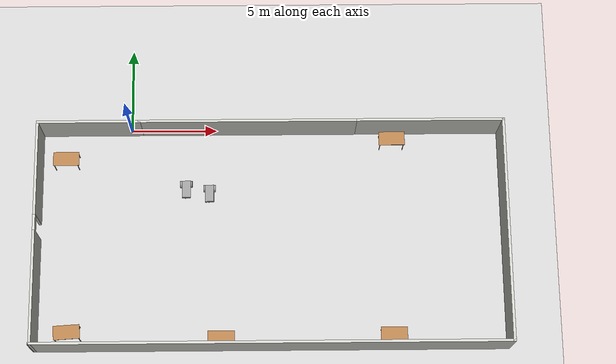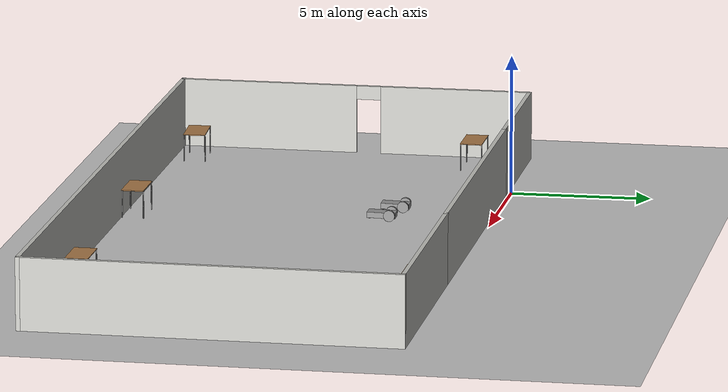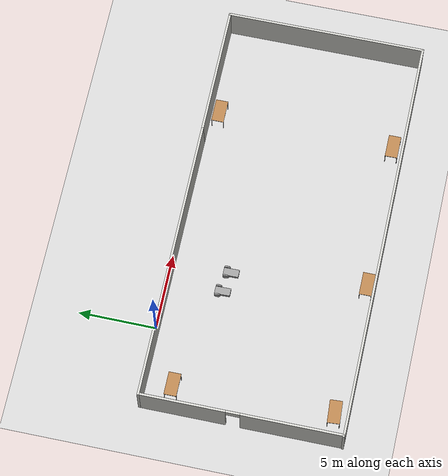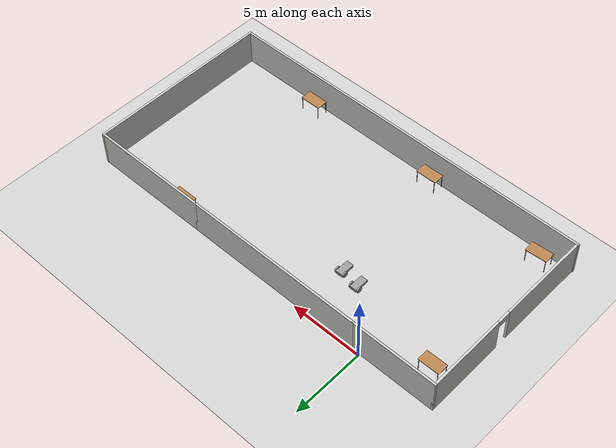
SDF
<sdf version="1.6">
 <world name="default">
  <plugin name="project1" filename="libproject1.so"/>
  <light name="sun" type="directional">
   <pose>0 0 10 0 -0 0</pose>
   <diffuse>0.8 0.8 0.8 1</diffuse>
   <specular>0.2 0.2 0.2 1</specular>
   <attenuation>
    <range>1000</range>
    <constant>0.9</constant>
    <linear>0.01</linear>
    <quadratic>0.001</quadratic>
   </attenuation>
   <direction>-0.5 0.1 -0.9</direction>
  </light>
  <model name="ground_plane">
   <static>1</static>
   <link name="link">
    <collision name="collision">
     <geometry><plane><normal>0 0 1</normal><size>100 100</size></plane></geometry>
     <surface><friction><ode><mu>100</mu><mu2>50</mu2></ode></friction></surface>
    </collision>
    <visual name="visual">
     <cast_shadows>0</cast_shadows>
     <geometry><plane><normal>0 0 1</normal><size>100 100</size></plane></geometry>
     <material>
      <script><uri>file://media/materials/scripts/gazebo.material</uri><name>Gazebo/Grey</name></script>
     </material>
    </visual>
   </link>
  </model>
  <gravity>0 0 -9.8</gravity>
  <magnetic_field>6e-06 2.3e-05 -4.2e-05</magnetic_field>
  <atmosphere type="adiabatic"/>
  <physics name="default_physics" default="0" type="ode">
   <max_step_size>0.001</max_step_size>
   <real_time_factor>1</real_time_factor>
   <real_time_update_rate>1000</real_time_update_rate>
  </physics>
  <scene><ambient>0.4 0.4 0.4 1</ambient><background>0.7 0.7 0.7 1</background><shadows>1</shadows></scene>
  <spherical_coordinates>
   <surface_model>EARTH_WGS84</surface_model>
   <latitude_deg>0</latitude_deg>
   <longitude_deg>0</longitude_deg>
   <elevation>0</elevation>
   <heading_deg>0</heading_deg>
  </spherical_coordinates>
  <model name="table_0">
   <static>1</static>
   <link name="link">
    <collision name="surface">
     <pose>0 0 1 0 -0 0</pose>
     <geometry><box><size>1.5 0.8 0.03</size></box></geometry>
     <surface><friction><ode><mu>0.6</mu><mu2>0.6</mu2></ode></friction></surface>
    </collision>
    <visual name="visual1">
     <pose>0 0 1 0 -0 0</pose>
     <geometry><box><size>1.5 0.8 0.03</size></box></geometry>
     <material>
      <script><uri>file://media/materials/scripts/gazebo.material</uri><name>Gazebo/Wood</name></script>
     </material>
    </visual>
    <collision name="front_left_leg">
     <pose>0.68 0.38 0.5 0 -0 0</pose>
     <geometry><cylinder><radius>0.02</radius><length>1</length></cylinder></geometry>
    </collision>
    <visual name="front_left_leg">
     <pose>0.68 0.38 0.5 0 -0 0</pose>
     <geometry><cylinder><radius>0.02</radius><length>1</length></cylinder></geometry>
     <material>
      <script><uri>file://media/materials/scripts/gazebo.material</uri><name>Gazebo/Grey</name></script>
     </material>
    </visual>
    <collision name="front_right_leg">
     <pose>0.68 -0.38 0.5 0 -0 0</pose>
     <geometry><cylinder><radius>0.02</radius><length>1</length></cylinder></geometry>
    </collision>
    <visual name="front_right_leg">
     <pose>0.68 -0.38 0.5 0 -0 0</pose>
     <geometry><cylinder><radius>0.02</radius><length>1</length></cylinder></geometry>
     <material>
      <script><uri>file://media/materials/scripts/gazebo.material</uri><name>Gazebo/Grey</name></script>
     </material>
    </visual>
    <collision name="back_right_leg">
     <pose>-0.68 -0.38 0.5 0 -0 0</pose>
     <geometry><cylinder><radius>0.02</radius><length>1</length></cylinder></geometry>
    </collision>
    <visual name="back_right_leg">
     <pose>-0.68 -0.38 0.5 0 -0 0</pose>
     <geometry><cylinder><radius>0.02</radius><length>1</length></cylinder></geometry>
     <material>
      <script><uri>file://media/materials/scripts/gazebo.material</uri><name>Gazebo/Grey</name></script>
     </material>
    </visual>
    <collision name="back_left_leg">
     <pose>-0.68 0.38 0.5 0 -0 0</pose>
     <geometry><cylinder><radius>0.02</radius><length>1</length></cylinder></geometry>
    </collision>
    <visual name="back_left_leg">
     <pose>-0.68 0.38 0.5 0 -0 0</pose>
     <geometry><cylinder><radius>0.02</radius><length>1</length></cylinder></geometry>
     <material>
      <script><uri>file://media/materials/scripts/gazebo.material</uri><name>Gazebo/Grey</name></script>
     </material>
    </visual>
   </link>
   <pose>-3.73384 -1.95117 0 0 -0 0</pose>
  </model>
  <model name="classroom">
   <pose>8.12459 -6.59825 0 0 -0 0</pose>
   <link name="Wall_10">
    <pose>-13.375 0 0 0 0 -1.5708</pose>
    <visual name="Wall_10_Visual_0">
     <pose>-3.72559 0 1.25 0 -0 0</pose>
     <geometry><box><size>5.54883 0.15 2.5</size></box></geometry>
     <material>
      <script><uri>file://media/materials/scripts/gazebo.material</uri><name>Gazebo/CeilingTiled</name></script>
      <ambient>1 1 1 1</ambient>
     </material>
     <meta><layer>0</layer></meta>
    </visual>
    <collision name="Wall_10_Collision_0">
     <geometry><box><size>5.54883 0.15 2.5</size></box></geometry>
     <pose>-3.72559 0 1.25 0 -0 0</pose>
    </collision>
    <visual name="Wall_10_Visual_1">
     <pose>3.22441 0 1.25 0 -0 0</pose>
     <geometry><box><size>6.55117 0.15 2.5</size></box></geometry>
     <material>
      <script><uri>file://media/materials/scripts/gazebo.material</uri><name>Gazebo/CeilingTiled</name></script>
      <ambient>1 1 1 1</ambient>
     </material>
     <meta><layer>0</layer></meta>
    </visual>
    <collision name="Wall_10_Collision_1">
     <geometry><box><size>6.55117 0.15 2.5</size></box></geometry>
     <pose>3.22441 0 1.25 0 -0 0</pose>
    </collision>
    <visual name="Wall_10_Visual_2">
     <pose>-0.501171 0 2.25 0 -0 0</pose>
     <geometry><box><size>0.9 0.15 0.5</size></box></geometry>
     <material>
      <script><uri>file://media/materials/scripts/gazebo.material</uri><name>Gazebo/CeilingTiled</name></script>
      <ambient>1 1 1 1</ambient>
     </material>
     <meta><layer>0</layer></meta>
    </visual>
    <collision name="Wall_10_Collision_2">
     <geometry><box><size>0.9 0.15 0.5</size></box></geometry>
     <pose>-0.501171 0 2.25 0 -0 0</pose>
    </collision>
   </link>
   <link name="Wall_14">
    <collision name="Wall_14_Collision">
     <geometry><box><size>8.5 0.15 2.5</size></box></geometry>
     <pose>0 0 1.25 0 -0 0</pose>
    </collision>
    <visual name="Wall_14_Visual">
     <pose>0 0 1.25 0 -0 0</pose>
     <geometry><box><size>8.5 0.15 2.5</size></box></geometry>
     <material>
      <script><uri>file://media/materials/scripts/gazebo.material</uri><name>Gazebo/CeilingTiled</name></script>
      <ambient>0.921569 0.807843 0.615686 1</ambient>
     </material>
     <meta><layer>0</layer></meta>
    </visual>
    <pose>9.25 6.425 0 0 -0 0</pose>
   </link>
   <link name="Wall_15">
    <collision name="Wall_15_Collision">
     <geometry><box><size>13 0.15 2.5</size></box></geometry>
     <pose>0 0 1.25 0 -0 0</pose>
    </collision>
    <visual name="Wall_15_Visual">
     <pose>0 0 1.25 0 -0 0</pose>
     <geometry><box><size>13 0.15 2.5</size></box></geometry>
     <material>
      <script><uri>file://media/materials/scripts/gazebo.material</uri><name>Gazebo/CeilingTiled</name></script>
      <ambient>1 1 1 1</ambient>
     </material>
     <meta><layer>0</layer></meta>
    </visual>
    <pose>13.425 0 0 0 0 -1.5708</pose>
   </link>
   <link name="Wall_16">
    <collision name="Wall_16_Collision">
     <geometry><box><size>27 0.15 2.5</size></box></geometry>
     <pose>0 0 1.25 0 -0 0</pose>
    </collision>
    <visual name="Wall_16_Visual">
     <pose>0 0 1.25 0 -0 0</pose>
     <geometry><box><size>27 0.15 2.5</size></box></geometry>
     <material>
      <script><uri>file://media/materials/scripts/gazebo.material</uri><name>Gazebo/CeilingTiled</name></script>
      <ambient>1 1 1 1</ambient>
     </material>
     <meta><layer>0</layer></meta>
    </visual>
    <pose>0 -6.425 0 0 -0 3.14159</pose>
   </link>
   <link name="Wall_5">
    <collision name="Wall_5_Collision">
     <geometry><box><size>12.75 0.15 2.5</size></box></geometry>
     <pose>0 0 1.25 0 -0 0</pose>
    </collision>
    <visual name="Wall_5_Visual">
     <pose>0 0 1.25 0 -0 0</pose>
     <geometry><box><size>12.75 0.15 2.5</size></box></geometry>
     <material>
      <script><uri>file://media/materials/scripts/gazebo.material</uri><name>Gazebo/CeilingTiled</name></script>
      <ambient>0.921569 0.807843 0.615686 1</ambient>
     </material>
     <meta><layer>0</layer></meta>
    </visual>
    <pose>-1.225 6.425 0 0 -0 0</pose>
   </link>
   <link name="Wall_9">
    <collision name="Wall_9_Collision">
     <geometry><box><size>6 0.15 2.5</size></box></geometry>
     <pose>0 0 1.25 0 -0 0</pose>
    </collision>
    <visual name="Wall_9_Visual">
     <pose>0 0 1.25 0 -0 0</pose>
     <geometry><box><size>6 0.15 2.5</size></box></geometry>
     <material>
      <script><uri>file://media/materials/scripts/gazebo.material</uri><name>Gazebo/CeilingTiled</name></script>
      <ambient>0.921569 0.807843 0.615686 1</ambient>
     </material>
     <meta><layer>0</layer></meta>
    </visual>
    <pose>-10.45 6.425 0 0 -0 3.14159</pose>
   </link>
   <static>1</static>
  </model>
  <model name="minibot">
   <link name="link_0">
    <pose>0.01125 -0.03748 0.0275 0 -0 0</pose>
    <inertial>
     <mass>1</mass>
     <inertia>
      <ixx>0.166667</ixx>
      <ixy>0</ixy>
      <ixz>0</ixz>
      <iyy>0.166667</iyy>
      <iyz>0</iyz>
      <izz>0.166667</izz>
     </inertia>
    </inertial>
    <visual name="visual">
     <geometry><box><size>0.5 1 0.2</size></box></geometry>
     <material>
      <lighting>1</lighting>
      <script><uri>file://media/materials/scripts/gazebo.material</uri><name>Gazebo/Grey</name></script>
      <shader type="pixel"><normal_map>__default__</normal_map></shader>
      <ambient>0.3 0.3 0.3 1</ambient>
      <diffuse>0.7 0.7 0.7 1</diffuse>
      <specular>0.01 0.01 0.01 1</specular>
      <emissive>0 0 0 1</emissive>
     </material>
    </visual>
    <collision name="collision">
     <geometry><box><size>0.5 1 0.2</size></box></geometry>
     <surface>
      <friction>
       <ode><mu>1</mu><mu2>1</mu2><fdir1>0 0 0</fdir1><slip1>0</slip1><slip2>0</slip2></ode>
       <torsional>
        <coefficient>1</coefficient>
        <patch_radius>0</patch_radius>
        <surface_radius>0</surface_radius>
        <use_patch_radius>1</use_patch_radius>
        <ode><slip>0</slip></ode>
       </torsional>
      </friction>
      <bounce><restitution_coefficient>0</restitution_coefficient><threshold>1e+06</threshold></bounce>
      <contact>
       <collide_without_contact>0</collide_without_contact>
       <collide_without_contact_bitmask>1</collide_without_contact_bitmask>
       <collide_bitmask>1</collide_bitmask>
       <ode>
        <soft_cfm>0</soft_cfm>
        <soft_erp>0.2</soft_erp>
        <kp>1e+13</kp>
        <kd>1</kd>
        <max_vel>0.01</max_vel>
        <min_depth>0</min_depth>
       </ode>
       <bullet>
        <split_impulse>1</split_impulse>
        <split_impulse_penetration_threshold>-0.01</split_impulse_penetration_threshold>
        <soft_cfm>0</soft_cfm>
        <soft_erp>0.2</soft_erp>
        <kp>1e+13</kp>
        <kd>1</kd>
       </bullet>
      </contact>
     </surface>
    </collision>
   </link>
   <link name="link_1">
    <pose>-0.03375 -0.48748 -0.1225 0 -0 0</pose>
    <inertial>
     <mass>1</mass>
     <inertia><ixx>0.1</ixx><ixy>0</ixy><ixz>0</ixz><iyy>0.1</iyy><iyz>0</iyz><izz>0.1</izz></inertia>
    </inertial>
    <visual name="visual">
     <geometry><sphere><radius>0.05</radius></sphere></geometry>
     <material>
      <lighting>1</lighting>
      <script><uri>file://media/materials/scripts/gazebo.material</uri><name>Gazebo/Grey</name></script>
      <shader type="pixel"><normal_map>__default__</normal_map></shader>
      <ambient>0.3 0.3 0.3 1</ambient>
      <diffuse>0.7 0.7 0.7 1</diffuse>
      <specular>0.01 0.01 0.01 1</specular>
      <emissive>0 0 0 1</emissive>
     </material>
    </visual>
    <collision name="collision">
     <geometry><sphere><radius>0.05</radius></sphere></geometry>
     <surface>
      <friction>
       <ode><mu>1</mu><mu2>1</mu2><fdir1>0 0 0</fdir1><slip1>0</slip1><slip2>0</slip2></ode>
       <torsional>
        <coefficient>1</coefficient>
        <patch_radius>0</patch_radius>
        <surface_radius>0</surface_radius>
        <use_patch_radius>1</use_patch_radius>
        <ode><slip>0</slip></ode>
       </torsional>
      </friction>
      <bounce><restitution_coefficient>0</restitution_coefficient><threshold>1e+06</threshold></bounce>
      <contact>
       <collide_without_contact>0</collide_without_contact>
       <collide_without_contact_bitmask>1</collide_without_contact_bitmask>
       <collide_bitmask>1</collide_bitmask>
       <ode>
        <soft_cfm>0</soft_cfm>
        <soft_erp>0.2</soft_erp>
        <kp>1e+13</kp>
        <kd>1</kd>
        <max_vel>0.01</max_vel>
        <min_depth>0</min_depth>
       </ode>
       <bullet>
        <split_impulse>1</split_impulse>
        <split_impulse_penetration_threshold>-0.01</split_impulse_penetration_threshold>
        <soft_cfm>0</soft_cfm>
        <soft_erp>0.2</soft_erp>
        <kp>1e+13</kp>
        <kd>1</kd>
       </bullet>
      </contact>
     </surface>
    </collision>
   </link>
   <link name="link_3">
    <pose>0.311568 0.26248 0.0475 0 -0 0</pose>
    <inertial>
     <mass>1</mass>
     <inertia><ixx>0.145833</ixx><ixy>0</ixy><ixz>0</ixz><iyy>0.145833</iyy><iyz>0</iyz><izz>0.125</izz></inertia>
    </inertial>
    <visual name="visual">
     <pose>0 0 0 1.57 -0 1.57</pose>
     <geometry><cylinder><radius>0.2</radius><length>0.1</length></cylinder></geometry>
     <material>
      <lighting>1</lighting>
      <script><uri>file://media/materials/scripts/gazebo.material</uri><name>Gazebo/Grey</name></script>
      <shader type="pixel"><normal_map>__default__</normal_map></shader>
      <ambient>0.3 0.3 0.3 1</ambient>
      <diffuse>0.7 0.7 0.7 1</diffuse>
      <specular>0.01 0.01 0.01 1</specular>
      <emissive>0 0 0 1</emissive>
     </material>
    </visual>
    <collision name="collision">
     <pose>0 0 0 1.57 -0 1.57</pose>
     <geometry><cylinder><radius>0.2</radius><length>0.1</length></cylinder></geometry>
     <surface>
      <friction>
       <ode><mu>1</mu><mu2>1</mu2><fdir1>0 0 0</fdir1><slip1>0</slip1><slip2>0</slip2></ode>
       <torsional>
        <coefficient>1</coefficient>
        <patch_radius>0</patch_radius>
        <surface_radius>0</surface_radius>
        <use_patch_radius>1</use_patch_radius>
        <ode><slip>0</slip></ode>
       </torsional>
      </friction>
      <bounce><restitution_coefficient>0</restitution_coefficient><threshold>1e+06</threshold></bounce>
      <contact>
       <collide_without_contact>0</collide_without_contact>
       <collide_without_contact_bitmask>1</collide_without_contact_bitmask>
       <collide_bitmask>1</collide_bitmask>
       <ode>
        <soft_cfm>0</soft_cfm>
        <soft_erp>0.2</soft_erp>
        <kp>1e+13</kp>
        <kd>1</kd>
        <max_vel>0.01</max_vel>
        <min_depth>0</min_depth>
       </ode>
       <bullet>
        <split_impulse>1</split_impulse>
        <split_impulse_penetration_threshold>-0.01</split_impulse_penetration_threshold>
        <soft_cfm>0</soft_cfm>
        <soft_erp>0.2</soft_erp>
        <kp>1e+13</kp>
        <kd>1</kd>
       </bullet>
      </contact>
     </surface>
    </collision>
   </link>
   <link name="link_3_clone">
    <pose>-0.289068 0.26248 0.0475 0 -0 0</pose>
    <inertial>
     <mass>1</mass>
     <inertia><ixx>0.145833</ixx><ixy>0</ixy><ixz>0</ixz><iyy>0.145833</iyy><iyz>0</iyz><izz>0.125</izz></inertia>
    </inertial>
    <visual name="visual">
     <pose>0 0 0 1.57 -0 1.57</pose>
     <geometry><cylinder><radius>0.2</radius><length>0.1</length></cylinder></geometry>
     <material>
      <lighting>1</lighting>
      <script><uri>file://media/materials/scripts/gazebo.material</uri><name>Gazebo/Grey</name></script>
      <shader type="pixel"><normal_map>__default__</normal_map></shader>
      <ambient>0.3 0.3 0.3 1</ambient>
      <diffuse>0.7 0.7 0.7 1</diffuse>
      <specular>0.01 0.01 0.01 1</specular>
      <emissive>0 0 0 1</emissive>
     </material>
    </visual>
    <collision name="collision">
     <pose>0 0 0 1.57 -0 1.57</pose>
     <geometry><cylinder><radius>0.2</radius><length>0.1</length></cylinder></geometry>
     <surface>
      <friction>
       <ode><mu>1</mu><mu2>1</mu2><fdir1>0 0 0</fdir1><slip1>0</slip1><slip2>0</slip2></ode>
       <torsional>
        <coefficient>1</coefficient>
        <patch_radius>0</patch_radius>
        <surface_radius>0</surface_radius>
        <use_patch_radius>1</use_patch_radius>
        <ode><slip>0</slip></ode>
       </torsional>
      </friction>
      <bounce><restitution_coefficient>0</restitution_coefficient><threshold>1e+06</threshold></bounce>
      <contact>
       <collide_without_contact>0</collide_without_contact>
       <collide_without_contact_bitmask>1</collide_without_contact_bitmask>
       <collide_bitmask>1</collide_bitmask>
       <ode>
        <soft_cfm>0</soft_cfm>
        <soft_erp>0.2</soft_erp>
        <kp>1e+13</kp>
        <kd>1</kd>
        <max_vel>0.01</max_vel>
        <min_depth>0</min_depth>
       </ode>
       <bullet>
        <split_impulse>1</split_impulse>
        <split_impulse_penetration_threshold>-0.01</split_impulse_penetration_threshold>
        <soft_cfm>0</soft_cfm>
        <soft_erp>0.2</soft_erp>
        <kp>1e+13</kp>
        <kd>1</kd>
       </bullet>
      </contact>
     </surface>
    </collision>
   </link>
   <joint name="link_0_JOINT_1" type="revolute">
    <parent>link_0</parent>
    <child>link_3_clone</child>
    <axis>
     <xyz>1 0 0</xyz>
     <use_parent_model_frame>0</use_parent_model_frame>
     <limit>
      <lower>-1.79769e+308</lower>
      <upper>1.79769e+308</upper>
      <effort>-1</effort>
      <velocity>-1</velocity>
     </limit>
     <dynamics>
      <spring_reference>0</spring_reference>
      <spring_stiffness>0</spring_stiffness>
      <damping>0</damping>
     </dynamics>
    </axis>
    <physics>
     <ode><limit><cfm>0</cfm><erp>0.2</erp></limit><suspension><cfm>0</cfm><erp>0.2</erp></suspension></ode>
    </physics>
   </joint>
   <joint name="link_0_JOINT_2" type="revolute">
    <parent>link_0</parent>
    <child>link_3</child>
    <axis>
     <xyz>1 0 0</xyz>
     <use_parent_model_frame>0</use_parent_model_frame>
     <limit>
      <lower>-1.79769e+308</lower>
      <upper>1.79769e+308</upper>
      <effort>-1</effort>
      <velocity>-1</velocity>
     </limit>
     <dynamics>
      <spring_reference>0</spring_reference>
      <spring_stiffness>0</spring_stiffness>
      <damping>0</damping>
     </dynamics>
    </axis>
    <physics>
     <ode><limit><cfm>0</cfm><erp>0.2</erp></limit><suspension><cfm>0</cfm><erp>0.2</erp></suspension></ode>
    </physics>
   </joint>
   <joint name="link_0_JOINT_3" type="ball">
    <parent>link_0</parent>
    <child>link_1</child>
    <physics>
     <ode><limit><cfm>0</cfm><erp>0.2</erp></limit><suspension><cfm>0</cfm><erp>0.2</erp></suspension></ode>
    </physics>
   </joint>
   <static>0</static>
   <pose>3.21371 -3.58428 0.159519 -0.026542 1.6e-05 0.012409</pose>
  </model>
  <model name="minibot_0">
   <link name="link_0">
    <pose>0.01125 -0.03748 0.0275 0 -0 0</pose>
    <inertial>
     <mass>1</mass>
     <inertia>
      <ixx>0.166667</ixx>
      <ixy>0</ixy>
      <ixz>0</ixz>
      <iyy>0.166667</iyy>
      <iyz>0</iyz>
      <izz>0.166667</izz>
     </inertia>
    </inertial>
    <visual name="visual">
     <geometry><box><size>0.5 1 0.2</size></box></geometry>
     <material>
      <lighting>1</lighting>
      <script><uri>file://media/materials/scripts/gazebo.material</uri><name>Gazebo/Grey</name></script>
      <shader type="pixel"><normal_map>__default__</normal_map></shader>
      <ambient>0.3 0.3 0.3 1</ambient>
      <diffuse>0.7 0.7 0.7 1</diffuse>
      <specular>0.01 0.01 0.01 1</specular>
      <emissive>0 0 0 1</emissive>
     </material>
    </visual>
    <collision name="collision">
     <geometry><box><size>0.5 1 0.2</size></box></geometry>
     <surface>
      <friction>
       <ode><mu>1</mu><mu2>1</mu2><fdir1>0 0 0</fdir1><slip1>0</slip1><slip2>0</slip2></ode>
       <torsional>
        <coefficient>1</coefficient>
        <patch_radius>0</patch_radius>
        <surface_radius>0</surface_radius>
        <use_patch_radius>1</use_patch_radius>
        <ode><slip>0</slip></ode>
       </torsional>
      </friction>
      <bounce><restitution_coefficient>0</restitution_coefficient><threshold>1e+06</threshold></bounce>
      <contact>
       <collide_without_contact>0</collide_without_contact>
       <collide_without_contact_bitmask>1</collide_without_contact_bitmask>
       <collide_bitmask>1</collide_bitmask>
       <ode>
        <soft_cfm>0</soft_cfm>
        <soft_erp>0.2</soft_erp>
        <kp>1e+13</kp>
        <kd>1</kd>
        <max_vel>0.01</max_vel>
        <min_depth>0</min_depth>
       </ode>
       <bullet>
        <split_impulse>1</split_impulse>
        <split_impulse_penetration_threshold>-0.01</split_impulse_penetration_threshold>
        <soft_cfm>0</soft_cfm>
        <soft_erp>0.2</soft_erp>
        <kp>1e+13</kp>
        <kd>1</kd>
       </bullet>
      </contact>
     </surface>
    </collision>
   </link>
   <link name="link_1">
    <pose>-0.03375 -0.48748 -0.1225 0 -0 0</pose>
    <inertial>
     <mass>1</mass>
     <inertia><ixx>0.1</ixx><ixy>0</ixy><ixz>0</ixz><iyy>0.1</iyy><iyz>0</iyz><izz>0.1</izz></inertia>
    </inertial>
    <visual name="visual">
     <geometry><sphere><radius>0.05</radius></sphere></geometry>
     <material>
      <lighting>1</lighting>
      <script><uri>file://media/materials/scripts/gazebo.material</uri><name>Gazebo/Grey</name></script>
      <shader type="pixel"><normal_map>__default__</normal_map></shader>
      <ambient>0.3 0.3 0.3 1</ambient>
      <diffuse>0.7 0.7 0.7 1</diffuse>
      <specular>0.01 0.01 0.01 1</specular>
      <emissive>0 0 0 1</emissive>
     </material>
    </visual>
    <collision name="collision">
     <geometry><sphere><radius>0.05</radius></sphere></geometry>
     <surface>
      <friction>
       <ode><mu>1</mu><mu2>1</mu2><fdir1>0 0 0</fdir1><slip1>0</slip1><slip2>0</slip2></ode>
       <torsional>
        <coefficient>1</coefficient>
        <patch_radius>0</patch_radius>
        <surface_radius>0</surface_radius>
        <use_patch_radius>1</use_patch_radius>
        <ode><slip>0</slip></ode>
       </torsional>
      </friction>
      <bounce><restitution_coefficient>0</restitution_coefficient><threshold>1e+06</threshold></bounce>
      <contact>
       <collide_without_contact>0</collide_without_contact>
       <collide_without_contact_bitmask>1</collide_without_contact_bitmask>
       <collide_bitmask>1</collide_bitmask>
       <ode>
        <soft_cfm>0</soft_cfm>
        <soft_erp>0.2</soft_erp>
        <kp>1e+13</kp>
        <kd>1</kd>
        <max_vel>0.01</max_vel>
        <min_depth>0</min_depth>
       </ode>
       <bullet>
        <split_impulse>1</split_impulse>
        <split_impulse_penetration_threshold>-0.01</split_impulse_penetration_threshold>
        <soft_cfm>0</soft_cfm>
        <soft_erp>0.2</soft_erp>
        <kp>1e+13</kp>
        <kd>1</kd>
       </bullet>
      </contact>
     </surface>
    </collision>
   </link>
   <link name="link_3">
    <pose>0.311568 0.26248 0.0475 0 -0 0</pose>
    <inertial>
     <mass>1</mass>
     <inertia><ixx>0.145833</ixx><ixy>0</ixy><ixz>0</ixz><iyy>0.145833</iyy><iyz>0</iyz><izz>0.125</izz></inertia>
    </inertial>
    <visual name="visual">
     <pose>0 0 0 1.57 -0 1.57</pose>
     <geometry><cylinder><radius>0.2</radius><length>0.1</length></cylinder></geometry>
     <material>
      <lighting>1</lighting>
      <script><uri>file://media/materials/scripts/gazebo.material</uri><name>Gazebo/Grey</name></script>
      <shader type="pixel"><normal_map>__default__</normal_map></shader>
      <ambient>0.3 0.3 0.3 1</ambient>
      <diffuse>0.7 0.7 0.7 1</diffuse>
      <specular>0.01 0.01 0.01 1</specular>
      <emissive>0 0 0 1</emissive>
     </material>
    </visual>
    <collision name="collision">
     <pose>0 0 0 1.57 -0 1.57</pose>
     <geometry><cylinder><radius>0.2</radius><length>0.1</length></cylinder></geometry>
     <surface>
      <friction>
       <ode><mu>1</mu><mu2>1</mu2><fdir1>0 0 0</fdir1><slip1>0</slip1><slip2>0</slip2></ode>
       <torsional>
        <coefficient>1</coefficient>
        <patch_radius>0</patch_radius>
        <surface_radius>0</surface_radius>
        <use_patch_radius>1</use_patch_radius>
        <ode><slip>0</slip></ode>
       </torsional>
      </friction>
      <bounce><restitution_coefficient>0</restitution_coefficient><threshold>1e+06</threshold></bounce>
      <contact>
       <collide_without_contact>0</collide_without_contact>
       <collide_without_contact_bitmask>1</collide_without_contact_bitmask>
       <collide_bitmask>1</collide_bitmask>
       <ode>
        <soft_cfm>0</soft_cfm>
        <soft_erp>0.2</soft_erp>
        <kp>1e+13</kp>
        <kd>1</kd>
        <max_vel>0.01</max_vel>
        <min_depth>0</min_depth>
       </ode>
       <bullet>
        <split_impulse>1</split_impulse>
        <split_impulse_penetration_threshold>-0.01</split_impulse_penetration_threshold>
        <soft_cfm>0</soft_cfm>
        <soft_erp>0.2</soft_erp>
        <kp>1e+13</kp>
        <kd>1</kd>
       </bullet>
      </contact>
     </surface>
    </collision>
   </link>
   <link name="link_3_clone">
    <pose>-0.289068 0.26248 0.0475 0 -0 0</pose>
    <inertial>
     <mass>1</mass>
     <inertia><ixx>0.145833</ixx><ixy>0</ixy><ixz>0</ixz><iyy>0.145833</iyy><iyz>0</iyz><izz>0.125</izz></inertia>
    </inertial>
    <visual name="visual">
     <pose>0 0 0 1.57 -0 1.57</pose>
     <geometry><cylinder><radius>0.2</radius><length>0.1</length></cylinder></geometry>
     <material>
      <lighting>1</lighting>
      <script><uri>file://media/materials/scripts/gazebo.material</uri><name>Gazebo/Grey</name></script>
      <shader type="pixel"><normal_map>__default__</normal_map></shader>
      <ambient>0.3 0.3 0.3 1</ambient>
      <diffuse>0.7 0.7 0.7 1</diffuse>
      <specular>0.01 0.01 0.01 1</specular>
      <emissive>0 0 0 1</emissive>
     </material>
    </visual>
    <collision name="collision">
     <pose>0 0 0 1.57 -0 1.57</pose>
     <geometry><cylinder><radius>0.2</radius><length>0.1</length></cylinder></geometry>
     <surface>
      <friction>
       <ode><mu>1</mu><mu2>1</mu2><fdir1>0 0 0</fdir1><slip1>0</slip1><slip2>0</slip2></ode>
       <torsional>
        <coefficient>1</coefficient>
        <patch_radius>0</patch_radius>
        <surface_radius>0</surface_radius>
        <use_patch_radius>1</use_patch_radius>
        <ode><slip>0</slip></ode>
       </torsional>
      </friction>
      <bounce><restitution_coefficient>0</restitution_coefficient><threshold>1e+06</threshold></bounce>
      <contact>
       <collide_without_contact>0</collide_without_contact>
       <collide_without_contact_bitmask>1</collide_without_contact_bitmask>
       <collide_bitmask>1</collide_bitmask>
       <ode>
        <soft_cfm>0</soft_cfm>
        <soft_erp>0.2</soft_erp>
        <kp>1e+13</kp>
        <kd>1</kd>
        <max_vel>0.01</max_vel>
        <min_depth>0</min_depth>
       </ode>
       <bullet>
        <split_impulse>1</split_impulse>
        <split_impulse_penetration_threshold>-0.01</split_impulse_penetration_threshold>
        <soft_cfm>0</soft_cfm>
        <soft_erp>0.2</soft_erp>
        <kp>1e+13</kp>
        <kd>1</kd>
       </bullet>
      </contact>
     </surface>
    </collision>
   </link>
   <joint name="link_0_JOINT_1" type="revolute">
    <parent>link_0</parent>
    <child>link_3_clone</child>
    <axis>
     <xyz>1 0 0</xyz>
     <use_parent_model_frame>0</use_parent_model_frame>
     <limit>
      <lower>-1.79769e+308</lower>
      <upper>1.79769e+308</upper>
      <effort>-1</effort>
      <velocity>-1</velocity>
     </limit>
     <dynamics>
      <spring_reference>0</spring_reference>
      <spring_stiffness>0</spring_stiffness>
      <damping>0</damping>
     </dynamics>
    </axis>
    <physics>
     <ode><limit><cfm>0</cfm><erp>0.2</erp></limit><suspension><cfm>0</cfm><erp>0.2</erp></suspension></ode>
    </physics>
   </joint>
   <joint name="link_0_JOINT_2" type="revolute">
    <parent>link_0</parent>
    <child>link_3</child>
    <axis>
     <xyz>1 0 0</xyz>
     <use_parent_model_frame>0</use_parent_model_frame>
     <limit>
      <lower>-1.79769e+308</lower>
      <upper>1.79769e+308</upper>
      <effort>-1</effort>
      <velocity>-1</velocity>
     </limit>
     <dynamics>
      <spring_reference>0</spring_reference>
      <spring_stiffness>0</spring_stiffness>
      <damping>0</damping>
     </dynamics>
    </axis>
    <physics>
     <ode><limit><cfm>0</cfm><erp>0.2</erp></limit><suspension><cfm>0</cfm><erp>0.2</erp></suspension></ode>
    </physics>
   </joint>
   <joint name="link_0_JOINT_3" type="ball">
    <parent>link_0</parent>
    <child>link_1</child>
    <physics>
     <ode><limit><cfm>0</cfm><erp>0.2</erp></limit><suspension><cfm>0</cfm><erp>0.2</erp></suspension></ode>
    </physics>
   </joint>
   <static>0</static>
   <pose>4.56612 -3.84252 0.159514 -0.026553 7e-06 0.011927</pose>
  </model>
  <model name="table">
   <static>1</static>
   <link name="link">
    <collision name="surface">
     <pose>0 0 1 0 -0 0</pose>
     <geometry><box><size>1.5 0.8 0.03</size></box></geometry>
     <surface><friction><ode><mu>0.6</mu><mu2>0.6</mu2></ode></friction></surface>
    </collision>
    <visual name="visual1">
     <pose>0 0 1 0 -0 0</pose>
     <geometry><box><size>1.5 0.8 0.03</size></box></geometry>
     <material>
      <script><uri>file://media/materials/scripts/gazebo.material</uri><name>Gazebo/Wood</name></script>
     </material>
    </visual>
    <collision name="front_left_leg">
     <pose>0.68 0.38 0.5 0 -0 0</pose>
     <geometry><cylinder><radius>0.02</radius><length>1</length></cylinder></geometry>
    </collision>
    <visual name="front_left_leg">
     <pose>0.68 0.38 0.5 0 -0 0</pose>
     <geometry><cylinder><radius>0.02</radius><length>1</length></cylinder></geometry>
     <material>
      <script><uri>file://media/materials/scripts/gazebo.material</uri><name>Gazebo/Grey</name></script>
     </material>
    </visual>
    <collision name="front_right_leg">
     <pose>0.68 -0.38 0.5 0 -0 0</pose>
     <geometry><cylinder><radius>0.02</radius><length>1</length></cylinder></geometry>
    </collision>
    <visual name="front_right_leg">
     <pose>0.68 -0.38 0.5 0 -0 0</pose>
     <geometry><cylinder><radius>0.02</radius><length>1</length></cylinder></geometry>
     <material>
      <script><uri>file://media/materials/scripts/gazebo.material</uri><name>Gazebo/Grey</name></script>
     </material>
    </visual>
    <collision name="back_right_leg">
     <pose>-0.68 -0.38 0.5 0 -0 0</pose>
     <geometry><cylinder><radius>0.02</radius><length>1</length></cylinder></geometry>
    </collision>
    <visual name="back_right_leg">
     <pose>-0.68 -0.38 0.5 0 -0 0</pose>
     <geometry><cylinder><radius>0.02</radius><length>1</length></cylinder></geometry>
     <material>
      <script><uri>file://media/materials/scripts/gazebo.material</uri><name>Gazebo/Grey</name></script>
     </material>
    </visual>
    <collision name="back_left_leg">
     <pose>-0.68 0.38 0.5 0 -0 0</pose>
     <geometry><cylinder><radius>0.02</radius><length>1</length></cylinder></geometry>
    </collision>
    <visual name="back_left_leg">
     <pose>-0.68 0.38 0.5 0 -0 0</pose>
     <geometry><cylinder><radius>0.02</radius><length>1</length></cylinder></geometry>
     <material>
      <script><uri>file://media/materials/scripts/gazebo.material</uri><name>Gazebo/Grey</name></script>
     </material>
    </visual>
   </link>
   <pose>-3.41965 -12.1472 0 0 -0 0.064285</pose>
  </model>
  <model name="table_1">
   <static>1</static>
   <link name="link">
    <collision name="surface">
     <pose>0 0 1 0 -0 0</pose>
     <geometry><box><size>1.5 0.8 0.03</size></box></geometry>
     <surface><friction><ode><mu>0.6</mu><mu2>0.6</mu2></ode></friction></surface>
    </collision>
    <visual name="visual1">
     <pose>0 0 1 0 -0 0</pose>
     <geometry><box><size>1.5 0.8 0.03</size></box></geometry>
     <material>
      <script><uri>file://media/materials/scripts/gazebo.material</uri><name>Gazebo/Wood</name></script>
     </material>
    </visual>
    <collision name="front_left_leg">
     <pose>0.68 0.38 0.5 0 -0 0</pose>
     <geometry><cylinder><radius>0.02</radius><length>1</length></cylinder></geometry>
    </collision>
    <visual name="front_left_leg">
     <pose>0.68 0.38 0.5 0 -0 0</pose>
     <geometry><cylinder><radius>0.02</radius><length>1</length></cylinder></geometry>
     <material>
      <script><uri>file://media/materials/scripts/gazebo.material</uri><name>Gazebo/Grey</name></script>
     </material>
    </visual>
    <collision name="front_right_leg">
     <pose>0.68 -0.38 0.5 0 -0 0</pose>
     <geometry><cylinder><radius>0.02</radius><length>1</length></cylinder></geometry>
    </collision>
    <visual name="front_right_leg">
     <pose>0.68 -0.38 0.5 0 -0 0</pose>
     <geometry><cylinder><radius>0.02</radius><length>1</length></cylinder></geometry>
     <material>
      <script><uri>file://media/materials/scripts/gazebo.material</uri><name>Gazebo/Grey</name></script>
     </material>
    </visual>
    <collision name="back_right_leg">
     <pose>-0.68 -0.38 0.5 0 -0 0</pose>
     <geometry><cylinder><radius>0.02</radius><length>1</length></cylinder></geometry>
    </collision>
    <visual name="back_right_leg">
     <pose>-0.68 -0.38 0.5 0 -0 0</pose>
     <geometry><cylinder><radius>0.02</radius><length>1</length></cylinder></geometry>
     <material>
      <script><uri>file://media/materials/scripts/gazebo.material</uri><name>Gazebo/Grey</name></script>
     </material>
    </visual>
    <collision name="back_left_leg">
     <pose>-0.68 0.38 0.5 0 -0 0</pose>
     <geometry><cylinder><radius>0.02</radius><length>1</length></cylinder></geometry>
    </collision>
    <visual name="back_left_leg">
     <pose>-0.68 0.38 0.5 0 -0 0</pose>
     <geometry><cylinder><radius>0.02</radius><length>1</length></cylinder></geometry>
     <material>
      <script><uri>file://media/materials/scripts/gazebo.material</uri><name>Gazebo/Grey</name></script>
     </material>
    </visual>
   </link>
   <pose>5.29742 -12.5263 0 0 -0 0</pose>
  </model>
  <model name="table_2">
   <static>1</static>
   <link name="link">
    <collision name="surface">
     <pose>0 0 1 0 -0 0</pose>
     <geometry><box><size>1.5 0.8 0.03</size></box></geometry>
     <surface><friction><ode><mu>0.6</mu><mu2>0.6</mu2></ode></friction></surface>
    </collision>
    <visual name="visual1">
     <pose>0 0 1 0 -0 0</pose>
     <geometry><box><size>1.5 0.8 0.03</size></box></geometry>
     <material>
      <script><uri>file://media/materials/scripts/gazebo.material</uri><name>Gazebo/Wood</name></script>
     </material>
    </visual>
    <collision name="front_left_leg">
     <pose>0.68 0.38 0.5 0 -0 0</pose>
     <geometry><cylinder><radius>0.02</radius><length>1</length></cylinder></geometry>
    </collision>
    <visual name="front_left_leg">
     <pose>0.68 0.38 0.5 0 -0 0</pose>
     <geometry><cylinder><radius>0.02</radius><length>1</length></cylinder></geometry>
     <material>
      <script><uri>file://media/materials/scripts/gazebo.material</uri><name>Gazebo/Grey</name></script>
     </material>
    </visual>
    <collision name="front_right_leg">
     <pose>0.68 -0.38 0.5 0 -0 0</pose>
     <geometry><cylinder><radius>0.02</radius><length>1</length></cylinder></geometry>
    </collision>
    <visual name="front_right_leg">
     <pose>0.68 -0.38 0.5 0 -0 0</pose>
     <geometry><cylinder><radius>0.02</radius><length>1</length></cylinder></geometry>
     <material>
      <script><uri>file://media/materials/scripts/gazebo.material</uri><name>Gazebo/Grey</name></script>
     </material>
    </visual>
    <collision name="back_right_leg">
     <pose>-0.68 -0.38 0.5 0 -0 0</pose>
     <geometry><cylinder><radius>0.02</radius><length>1</length></cylinder></geometry>
    </collision>
    <visual name="back_right_leg">
     <pose>-0.68 -0.38 0.5 0 -0 0</pose>
     <geometry><cylinder><radius>0.02</radius><length>1</length></cylinder></geometry>
     <material>
      <script><uri>file://media/materials/scripts/gazebo.material</uri><name>Gazebo/Grey</name></script>
     </material>
    </visual>
    <collision name="back_left_leg">
     <pose>-0.68 0.38 0.5 0 -0 0</pose>
     <geometry><cylinder><radius>0.02</radius><length>1</length></cylinder></geometry>
    </collision>
    <visual name="back_left_leg">
     <pose>-0.68 0.38 0.5 0 -0 0</pose>
     <geometry><cylinder><radius>0.02</radius><length>1</length></cylinder></geometry>
     <material>
      <script><uri>file://media/materials/scripts/gazebo.material</uri><name>Gazebo/Grey</name></script>
     </material>
    </visual>
   </link>
   <pose>15.04 -12.3613 0 0 -0 0</pose>
  </model>
  <model name="table_3">
   <static>1</static>
   <link name="link">
    <collision name="surface">
     <pose>0 0 1 0 -0 0</pose>
     <geometry><box><size>1.5 0.8 0.03</size></box></geometry>
     <surface><friction><ode><mu>0.6</mu><mu2>0.6</mu2></ode></friction></surface>
    </collision>
    <visual name="visual1">
     <pose>0 0 1 0 -0 0</pose>
     <geometry><box><size>1.5 0.8 0.03</size></box></geometry>
     <material>
      <script><uri>file://media/materials/scripts/gazebo.material</uri><name>Gazebo/Wood</name></script>
     </material>
    </visual>
    <collision name="front_left_leg">
     <pose>0.68 0.38 0.5 0 -0 0</pose>
     <geometry><cylinder><radius>0.02</radius><length>1</length></cylinder></geometry>
    </collision>
    <visual name="front_left_leg">
     <pose>0.68 0.38 0.5 0 -0 0</pose>
     <geometry><cylinder><radius>0.02</radius><length>1</length></cylinder></geometry>
     <material>
      <script><uri>file://media/materials/scripts/gazebo.material</uri><name>Gazebo/Grey</name></script>
     </material>
    </visual>
    <collision name="front_right_leg">
     <pose>0.68 -0.38 0.5 0 -0 0</pose>
     <geometry><cylinder><radius>0.02</radius><length>1</length></cylinder></geometry>
    </collision>
    <visual name="front_right_leg">
     <pose>0.68 -0.38 0.5 0 -0 0</pose>
     <geometry><cylinder><radius>0.02</radius><length>1</length></cylinder></geometry>
     <material>
      <script><uri>file://media/materials/scripts/gazebo.material</uri><name>Gazebo/Grey</name></script>
     </material>
    </visual>
    <collision name="back_right_leg">
     <pose>-0.68 -0.38 0.5 0 -0 0</pose>
     <geometry><cylinder><radius>0.02</radius><length>1</length></cylinder></geometry>
    </collision>
    <visual name="back_right_leg">
     <pose>-0.68 -0.38 0.5 0 -0 0</pose>
     <geometry><cylinder><radius>0.02</radius><length>1</length></cylinder></geometry>
     <material>
      <script><uri>file://media/materials/scripts/gazebo.material</uri><name>Gazebo/Grey</name></script>
     </material>
    </visual>
    <collision name="back_left_leg">
     <pose>-0.68 0.38 0.5 0 -0 0</pose>
     <geometry><cylinder><radius>0.02</radius><length>1</length></cylinder></geometry>
    </collision>
    <visual name="back_left_leg">
     <pose>-0.68 0.38 0.5 0 -0 0</pose>
     <geometry><cylinder><radius>0.02</radius><length>1</length></cylinder></geometry>
     <material>
      <script><uri>file://media/materials/scripts/gazebo.material</uri><name>Gazebo/Grey</name></script>
     </material>
    </visual>
   </link>
   <pose>15.2174 -0.837761 0 0 -0 0</pose>
  </model>
 </world>
</sdf>
